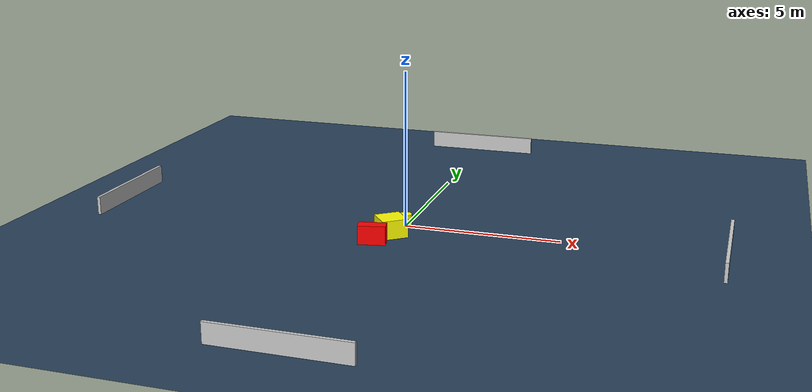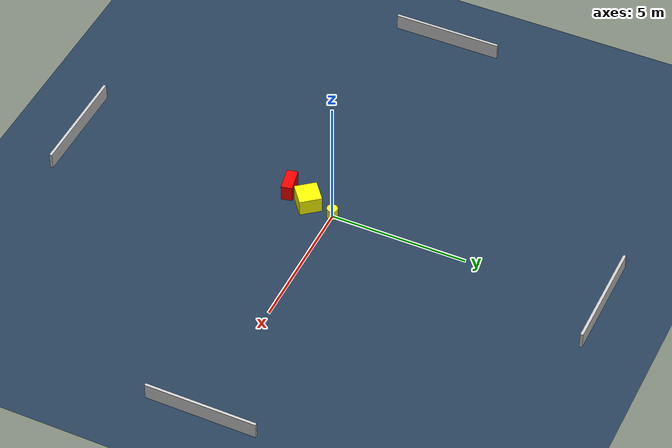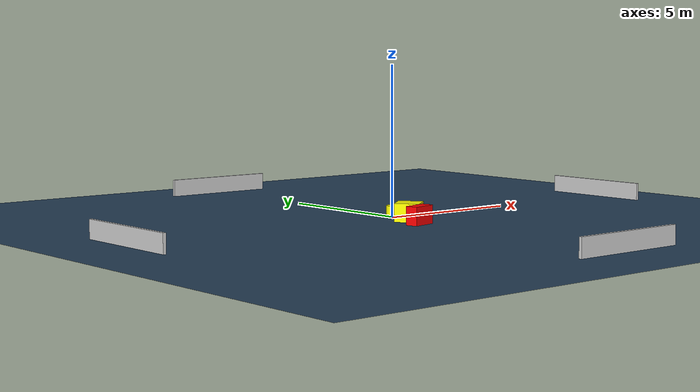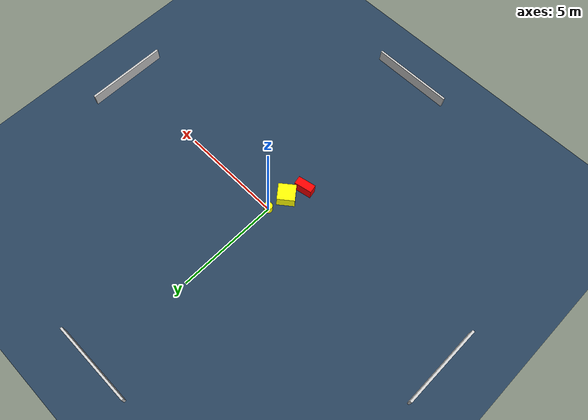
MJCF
<?xml version="1.0" ?>
<mujoco model="generated_environment">
  <option timestep="0.01" integrator="RK4" cone="elliptic"/>
  <default>
    <geom density="1"/>
  </default>
  <asset>
    <texture builtin="gradient" height="3072" name="skybox" rgb1="0.3 0.5 0.7" rgb2="0 0 0" type="skybox" width="512"/>
    <texture builtin="checker" height="300" name="groundplane" rgb1="0.2 0.3 0.4" rgb2="0.1 0.2 0.3" type="2d" width="300"/>
    <material name="groundplane" reflectance="0.2" texrepeat="5 5" texture="groundplane"/>
  </asset>
  <worldbody>
    <light dir="0 0 -1" directional="true" pos="0 0 1.5"/>
    <geom condim="3" friction="0.5 0.005 0.001" material="groundplane" name="floor" pos="0 0 0" size="0 0 0.05" type="plane"/>
    <body name="walls">
      <geom name="wall_1" condim="4" pos="-10.0 0.0 0.3" rgba="0.800000011920929 0.800000011920929 0.800000011920929 1.0" size="0.05 2.0 0.3" type="box"/>
      <geom name="wall_2" condim="4" pos="10.0 0.0 0.3" rgba="0.800000011920929 0.800000011920929 0.800000011920929 1.0" size="0.05 2.0 0.3" type="box"/>
      <geom name="wall_3" condim="4" pos="0.0 -10.0 0.3" rgba="0.800000011920929 0.800000011920929 0.800000011920929 1.0" size="2.0 0.05 0.3" type="box"/>
      <geom name="wall_4" condim="4" pos="0.0 10.0 0.3" rgba="0.800000011920929 0.800000011920929 0.800000011920929 1.0" size="2.0 0.05 0.3" type="box"/>
    </body>
    <body name="robot">
      <joint name="joint_x" type="slide" pos="0 0 0" axis="1 0 0"/>
      <joint name="joint_y" type="slide" pos="0 0 0" axis="0 1 0"/>
      <geom name="robot" type="cylinder" pos="0.0 0.0 0.2" size="0.2 0.2 0.0" mass="5.0" friction="1.0 0.005 0.0001" condim="4" rgba="1.0 1.0 0.0 1.0"/>
    </body>
    <body name="obstacle_1_movable">
      <geom name="obstacle_1_movable" condim="4" pos="-0.16321455986090572 -1.0066500578224913 0.3" euler="0 0 308.77678389142477" friction="0.0 0.005 0.001" rgba="1.0 1.0 0.0 1.0" size="0.4070514286655635 0.4177024051133865 0.3" type="box" mass="0.1"/>
      <joint type="free"/>
    </body>
    <body name="obstacle_2_static">
      <geom name="obstacle_2_static" condim="4" pos="-0.4790752826807509 -1.8718528548847517 0.3" euler="0 0 191.5285791150873" friction="0.0 0.005 0.001" rgba="1.0 0.0 0.0 1.0" size="0.43366951964122474 0.20007999341329522 0.3" type="box"/>
    </body>
  </worldbody>
  <actuator>
    <motor name="actuator_x" joint="joint_x" gear="1" ctrlrange="-1 1"/>
    <motor name="actuator_y" joint="joint_y" gear="1" ctrlrange="-1 1"/>
  </actuator>
</mujoco>
